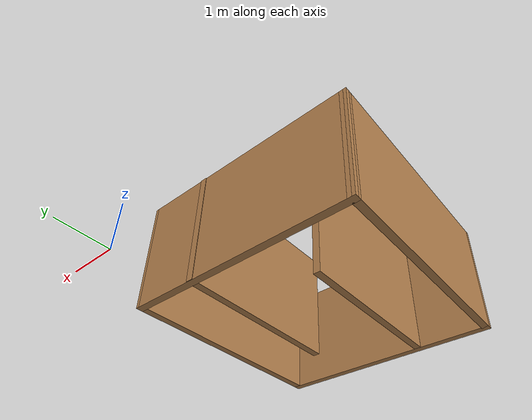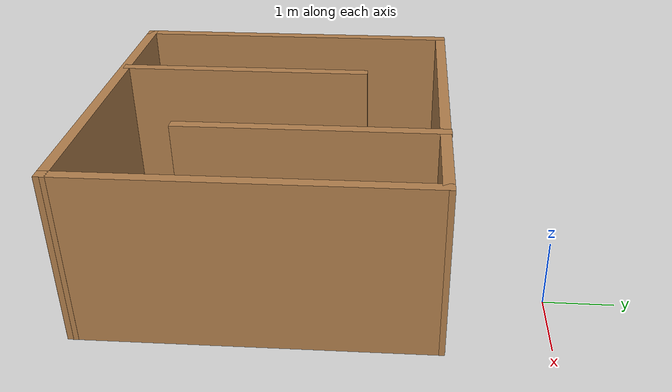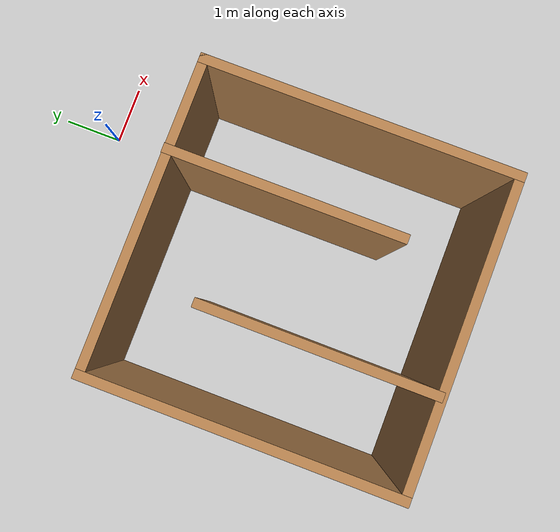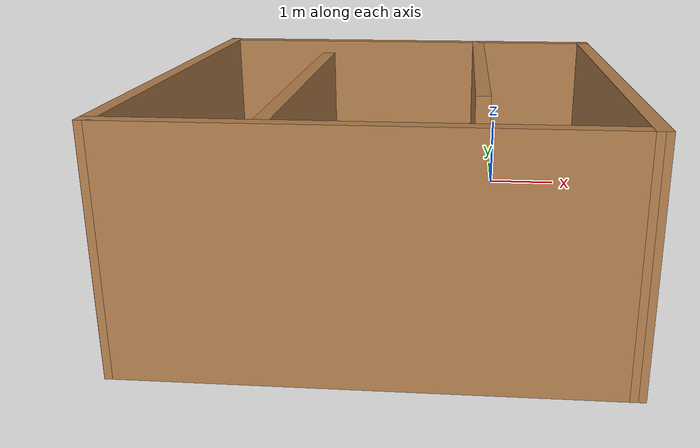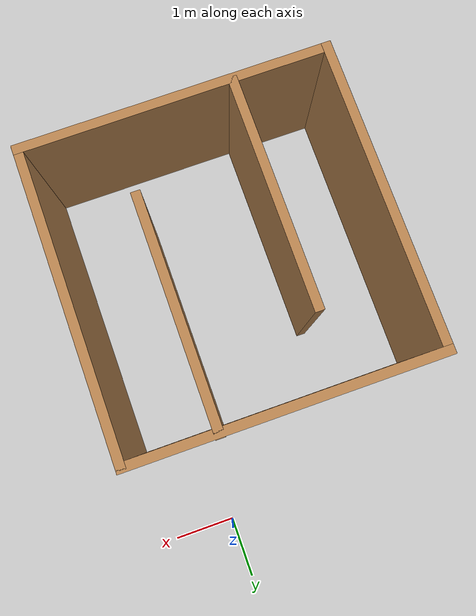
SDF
<?xml version='1.0'?>
<sdf version='1.6'>
  <model name='simple_maze'>
    <pose frame=''>-1.31229 -3.90212 0 0 -0 0</pose>
    <link name='Wall_0'>
      <collision name='Wall_0_Collision'>
        <geometry>
          <box>
            <size>5 0.15 2.5</size>
          </box>
        </geometry>
        <pose frame=''>0 0 1.25 0 -0 0</pose>
      </collision>
      <visual name='Wall_0_Visual'>
        <pose frame=''>0 0 1.25 0 -0 0</pose>
        <geometry>
          <box>
            <size>5 0.15 2.5</size>
          </box>
        </geometry>
        <material>
          <script>
            <uri>file://media/materials/scripts/gazebo.material</uri>
            <name>Gazebo/Wood</name>
          </script>
          <ambient>1 1 1 1</ambient>
        </material>
        <meta>
          <layer>0</layer>
        </meta>
      </visual>
      <pose frame=''>-2.425 -0.00481 0 0 -0 -1.56968</pose>
    </link>
    <link name='Wall_1'>
      <collision name='Wall_1_Collision'>
        <geometry>
          <box>
            <size>5 0.15 2.5</size>
          </box>
        </geometry>
        <pose frame=''>0 0 1.25 0 -0 0</pose>
      </collision>
      <visual name='Wall_1_Visual'>
        <pose frame=''>0 0 1.25 0 -0 0</pose>
        <geometry>
          <box>
            <size>5 0.15 2.5</size>
          </box>
        </geometry>
        <material>
          <script>
            <uri>file://media/materials/scripts/gazebo.material</uri>
            <name>Gazebo/Wood</name>
          </script>
          <ambient>1 1 1 1</ambient>
        </material>
        <meta>
          <layer>0</layer>
        </meta>
      </visual>
      <pose frame=''>0.002695 -2.42989 0 0 -0 -3.6e-05</pose>
    </link>
    <link name='Wall_2'>
      <collision name='Wall_2_Collision'>
        <geometry>
          <box>
            <size>5 0.15 2.5</size>
          </box>
        </geometry>
        <pose frame=''>0 0 1.25 0 -0 0</pose>
      </collision>
      <visual name='Wall_2_Visual'>
        <pose frame=''>0 0 1.25 0 -0 0</pose>
        <geometry>
          <box>
            <size>5 0.15 2.5</size>
          </box>
        </geometry>
        <material>
          <script>
            <uri>file://media/materials/scripts/gazebo.material</uri>
            <name>Gazebo/Wood</name>
          </script>
          <ambient>1 1 1 1</ambient>
        </material>
        <meta>
          <layer>0</layer>
        </meta>
      </visual>
      <pose frame=''>2.425 -0.004982 0 0 -0 1.57191</pose>
    </link>
    <link name='Wall_3'>
      <collision name='Wall_3_Collision'>
        <geometry>
          <box>
            <size>5 0.15 2.5</size>
          </box>
        </geometry>
        <pose frame=''>0 0 1.25 0 -0 0</pose>
      </collision>
      <visual name='Wall_3_Visual'>
        <pose frame=''>0 0 1.25 0 -0 0</pose>
        <geometry>
          <box>
            <size>5 0.15 2.5</size>
          </box>
        </geometry>
        <material>
          <script>
            <uri>file://media/materials/scripts/gazebo.material</uri>
            <name>Gazebo/Wood</name>
          </script>
          <ambient>1 1 1 1</ambient>
        </material>
        <meta>
          <layer>0</layer>
        </meta>
      </visual>
      <pose frame=''>-0.002695 2.4201 0 0 -0 3.14156</pose>
    </link>
    <link name='Wall_5'>
      <collision name='Wall_5_Collision'>
        <geometry>
          <box>
            <size>3.75 0.15 2.5</size>
          </box>
        </geometry>
        <pose frame=''>0 0 1.25 0 -0 0</pose>
      </collision>
      <visual name='Wall_5_Visual'>
        <pose frame=''>0 0 1.25 0 -0 0</pose>
        <geometry>
          <box>
            <size>3.75 0.15 2.5</size>
          </box>
        </geometry>
        <material>
          <script>
            <uri>file://media/materials/scripts/gazebo.material</uri>
            <name>Gazebo/Wood</name>
          </script>
          <ambient>1 1 1 1</ambient>
        </material>
        <meta>
          <layer>0</layer>
        </meta>
      </visual>
      <pose frame=''>0.999141 0.630064 0 0 -0 -1.5708</pose>
    </link>
    <link name='Wall_7'>
      <collision name='Wall_7_Collision'>
        <geometry>
          <box>
            <size>3.75 0.15 2.5</size>
          </box>
        </geometry>
        <pose frame=''>0 0 1.25 0 -0 0</pose>
      </collision>
      <visual name='Wall_7_Visual'>
        <pose frame=''>0 0 1.25 0 -0 0</pose>
        <geometry>
          <box>
            <size>3.75 0.15 2.5</size>
          </box>
        </geometry>
        <material>
          <script>
            <uri>file://media/materials/scripts/gazebo.material</uri>
            <name>Gazebo/Wood</name>
          </script>
          <ambient>1 1 1 1</ambient>
        </material>
        <meta>
          <layer>0</layer>
        </meta>
      </visual>
      <pose frame=''>-0.910859 -0.579936 0 0 -0 1.5708</pose>
    </link>
    <static>1</static>
  </model>
</sdf>
